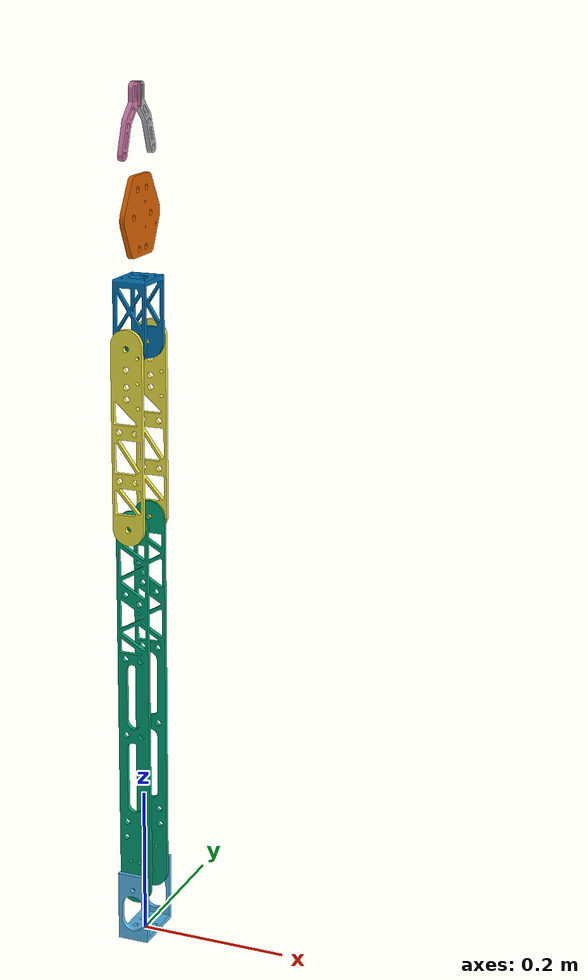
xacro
<?xml version='1.0'?>

<robot name="arm" xmlns:xacro="http://www.ros.org/wiki/xacro">

  <xacro:property name="mass_base" value="2" />
  <xacro:property name="mass_upper_arm" value="5" />
  <xacro:property name="mass_forearm" value="2" />
  <xacro:property name="mass_wrist" value="2" />
  <xacro:property name="mass_claw_base" value="0.5" />
  <xacro:property name="mass_claw" value="1" />

  <xacro:include filename="$(find simulation)/robot/arm.gazebo" />
  <link name='arm_base_link'>
    <inertial>
      <mass value="1e-5" />
      <origin xyz="0 0 0" rpy="0 0 0"/>
      <inertia ixx="1e-6" ixy="0" ixz="0" iyy="1e-6" iyz="0" izz="1e-6" />
    </inertial>
  </link>
  <link name='base'>
    <inertial>
      <mass value="1.0"/>
      <origin xyz="0 0 0.047" rpy=" 0 0 0"/>
      <inertia
        ixx="${mass_base / 12.0 * (0.0785*0.0785 + 0.0953*0.0953)}" ixy="0.0" ixz="0.0"
        iyy="${mass_base / 12.0 * (0.0953*0.0953 + 0.0785*0.0785)}" iyz="0.0"
        izz="${mass_base / 12.0 * (0.0785*0.0785 + 0.0785*0.0785)}"/>
    </inertial>

    <collision name='collision'>
      <geometry>
        <mesh filename="package://simulation/robot/arm_parts/base.dae"/>
      </geometry>
    </collision>

    <visual name='visual'>
      <origin rpy="0 0 0" xyz="0 0 0"/>
      <geometry>
        <mesh filename="package://simulation/robot/arm_parts/base.dae"/>
      </geometry>
    </visual>
  </link>
  <joint type="revolute" name="base_arm_hinge">
    <limit upper="3.14" lower="-3.14" velocity="5" effort="10000"/>
    <origin xyz="0 0 0" rpy="0 0 0"/>
    <axis xyz="0 0 1" />
    <child link="base"/>
    <parent link="arm_base_link"/>
  </joint>

  <link name='upper_arm'>
    <collision name='collision'>
      <origin rpy="0 0 0" xyz="0 0 -0.0216"/>
      <geometry>
        <mesh filename="package://simulation/robot/arm_parts/upper_arm.dae"/>
      </geometry>
    </collision>

    <visual name='visual'>
      <origin rpy="0 0 0" xyz="0 0 -0.0216"/>
      <geometry>
        <mesh filename="package://simulation/robot/arm_parts/upper_arm.dae"/>
      </geometry>
    </visual>

    <inertial>
      <mass value="${mass_upper_arm}"/>
      <origin xyz="0 0 0.253" rpy=" 0 0 0"/>
      <inertia
          ixx="${mass_upper_arm / 12.0 * (0.0594*0.0594 + 0.507*0.507)}" ixy="0" ixz="0"
          iyy="${mass_upper_arm / 12.0 * (0.507*0.507 + 0.0594*0.0594)}" iyz="0"
          izz="${mass_upper_arm / 12.0 * (0.0594*0.0594 + 0.0594*0.0594)}"
      />
    </inertial>
  </link>

  <link name='forearm'>
    <collision name='collision'>
      <origin rpy="0 0 0" xyz="0 0 0.118"/>
      <geometry>
        <box size="0.0424 0.0785 0.237"/>
      </geometry>
    </collision>

    <visual name='visual'>
      <origin rpy="0 0 0" xyz="0 0 -0.0216"/>
      <geometry>
        <mesh filename="package://simulation/robot/arm_parts/forearm.dae"/>
      </geometry>
    </visual>

    <inertial>
      <mass value="${mass_forearm}"/>
      <origin xyz="0 0 0.118" rpy=" 0 0 0"/>
      <inertia
        ixx="${mass_forearm / 12.0 * (0.0785*0.0785 + 0.237*0.237)}" ixy="0.0" ixz="0.0"
        iyy="${mass_forearm / 12.0 * (0.237*0.237 + 0.0785*0.0785)}" iyz="0.0"
        izz="${mass_forearm / 12.0 * (0.0785*0.0785 + 0.0785*0.0785)}"/>
    </inertial>
  </link>

  <link name='wrist'>
    <collision name='collision'>
      <origin rpy="0 0 0" xyz="0 0 0.0217"/>
      <geometry>
        <box size="0.0432 0.0595 0.0865"/>
      </geometry>
    </collision>

    <visual name='visual'>
      <origin rpy="0 0 0" xyz="0 0 -0.0064"/>
      <geometry>
        <mesh filename="package://simulation/robot/arm_parts/wrist.dae"/>
      </geometry>
    </visual>

    <inertial>
      <mass value="${mass_wrist}"/>
      <origin xyz="0 0 0.0217" rpy=" 0 0 0"/>
      <inertia
        ixx="${mass_wrist / 12.0 * (0.0595*0.0595 + 0.0865*0.0865)}" ixy="0.0" ixz="0.0"
        iyy="${mass_wrist / 12.0 * (0.0865*0.0865 + 0.0595*0.0595)}" iyz="0.0"
        izz="${mass_wrist / 12.0 * (0.0595*0.0595 + 0.0595*0.0595)}"/>
    </inertial>
  </link>

  <link name='claw_base'>
    <collision name='collision'>
      <origin rpy="0 0 0" xyz="0 0 0.05"/>
      <geometry>
        <box size="0.0064 0.1045 0.1"/>
      </geometry>
    </collision>

    <visual name='visual'>
      <origin rpy="0 0 0" xyz="0 0 0"/>
      <geometry>
        <mesh filename="package://simulation/robot/arm_parts/claw_base.dae"/>
      </geometry>
    </visual>

    <inertial>
      <mass value="${mass_claw_base}"/>
      <origin xyz="0 0 0.05" rpy=" 0 0 0"/>
      <inertia
        ixx="${mass_claw_base / 12.0 * (0.1045*0.1045 + 0.1*0.1)}" ixy="0.0" ixz="0.0"
        iyy="${mass_claw_base / 12.0 * (0.1*0.1 + 0.1045*0.1045)}" iyz="0.0"
        izz="${mass_claw_base / 12.0 * (0.1045*0.1045 + 0.1045*0.1045)}"/>
    </inertial>
  </link>
  <gazebo reference="claw_base">
    <implicitSpringDamper>1</implicitSpringDamper>
    <mu1>100000</mu1>
    <mu2>100000</mu2>
    <kp>100000000.0</kp>
    <kd>1.0</kd>
  </gazebo>

  <link name='claw_right'>
    <collision name='collision'>
      <origin rpy="0 0 0" xyz="0 0 0"/>
      <geometry>
        <mesh filename="package://simulation/robot/arm_parts/claw.dae"/>
      </geometry>
      <surface>
        <friction>
          <ode>
            <mu>1.4</mu>
            <mu2>1.4</mu2>
          </ode>
        </friction>
      </surface>
      <contact>
        <ode>
          <mu>1.4</mu>
          <mu2>1.4</mu2>
          <min_depth>0.003</min_depth>
          <max_vel>0</max_vel>
        </ode>
      </contact>
    </collision>

    <visual name='visual'>
      <origin rpy="0 0 0" xyz="0 0 0"/>
      <geometry>
        <mesh filename="package://simulation/robot/arm_parts/claw.dae"/>
      </geometry>
    </visual>
    <inertial>
        <mass value="0.018491" />
        <origin xyz="0.0 0.0 0.0" />
        <inertia ixx = "0.000009" ixy = "-0.000001" ixz = "0.000000"
                  iyx = "-0.000001" iyy = "0.000001" iyz = "0.000000"
                  izx = "0.000000" izy = "0.000000" izz = "0.000010" />
    </inertial>
  </link>

  <link name='claw_left'>
    <collision name='collision'>
      <origin rpy="0 0 0" xyz="0 0 0"/>
      <geometry>
        <mesh filename="package://simulation/robot/arm_parts/claw.dae"/>
      </geometry>
      <surface>
        <friction>
          <ode>
            <mu>1.4</mu>
            <mu2>1.4</mu2>
          </ode>
        </friction>
      </surface>
      <contact>
        <ode>
          <mu>1.4</mu>
          <mu2>1.4</mu2>
          <min_depth>0.003</min_depth>
          <max_vel>0</max_vel>
        </ode>
      </contact>
    </collision>

    <visual name='visual'>
      <origin rpy="0 0 0" xyz="0 0 0"/>
      <geometry>
        <mesh filename="package://simulation/robot/arm_parts/claw.dae"/>
      </geometry>
    </visual>
    <inertial>
        <mass value="0.018491" />
        <origin xyz="0.0 0.0 0.0" />
        <inertia ixx = "0.000009" ixy = "-0.000001" ixz = "0.000000"
                  iyx = "-0.000001" iyy = "0.000001" iyz = "0.000000"
                  izx = "0.000000" izy = "0.000000" izz = "0.000010" />
    </inertial>
  </link>
  <gazebo reference="claw_left">
    <implicitSpringDamper>1</implicitSpringDamper>
    <mu1>100000</mu1>
    <mu2>100000</mu2>
    <kp>100000000.0</kp>
    <kd>1.0</kd>
  </gazebo>
  <gazebo reference="claw_right">
    <implicitSpringDamper>1</implicitSpringDamper>
    <mu1>100000</mu1>
    <mu2>100000</mu2>
    <kp>100000000.0</kp>
    <kd>1.0</kd>
  </gazebo>

  <joint type="revolute" name="lower_hinge">
    <limit upper="3.14" lower="-3.14" velocity="5" effort="10000"/>
    <origin xyz="0 0 0.074"/>
    <axis xyz="0 1 0" />
    <child link="upper_arm"/>
    <parent link="base"/>
  </joint>

  <joint type="revolute" name="upper_hinge">
    <limit upper="3.0" lower="-3.0" velocity="5" effort="10000"/>
    <origin xyz="0 0.0 0.507"/>
    <axis xyz="0 1 0" />
    <child link="forearm"/>
    <parent link="upper_arm"/>
  </joint>

  <joint type="revolute" name="forearm_hinge">
    <limit upper="1.57" lower="-1.57" velocity="5" effort="10000"/>
    <origin xyz="0 0.0 0.237"/>
    <axis xyz="0 1 0" />
    <child link="wrist"/>
    <parent link="forearm"/>
  </joint>

  <joint type="revolute" name="wrist_hinge">
    <limit upper="6.28" lower="-6.28" velocity="1" effort="0.5"/>
    <origin xyz="0 0.0 0.107"/>
    <axis xyz="0 0 1" />
    <child link="claw_base"/>
    <parent link="wrist"/>
  </joint>

  <joint type="revolute" name="claw_right_hinge">
    <limit upper="1.57" lower="0" velocity="2.0" effort="1000"/>
    <origin xyz="0 -0.04175 0.128"/>
    <axis xyz="1 0 0" />
    <child link="claw_right"/>
    <parent link="claw_base"/>
  </joint>

  <joint type="revolute" name="claw_left_hinge">
    <limit upper="1.57" lower="0" velocity="2.0" effort="1000"/>
    <origin xyz="0 0.04175 0.128" rpy="0 0 3.14"/>
    <axis xyz="1 0 0" />
    <child link="claw_left"/>
    <parent link="claw_base"/>
  </joint>

  <transmission name="tran1">
    <type>transmission_interface/SimpleTransmission</type>
    <joint name="base_arm_hinge">
      <hardwareInterface>hardware_interface/EffortJointInterface</hardwareInterface>
    </joint>
    <actuator name="motor1">
      <hardwareInterface>hardware_interface/EffortJointInterface</hardwareInterface>
      <mechanicalReduction>1</mechanicalReduction>
    </actuator>
  </transmission>

  <transmission name="tran2">
    <type>transmission_interface/SimpleTransmission</type>
    <joint name="lower_hinge">
      <hardwareInterface>hardware_interface/EffortJointInterface</hardwareInterface>
    </joint>
    <actuator name="motor2">
      <hardwareInterface>hardware_interface/EffortJointInterface</hardwareInterface>
      <mechanicalReduction>1</mechanicalReduction>
    </actuator>
  </transmission>

  <transmission name="tran3">
    <type>transmission_interface/SimpleTransmission</type>
    <joint name="forearm_hinge">
      <hardwareInterface>hardware_interface/EffortJointInterface</hardwareInterface>
    </joint>
    <actuator name="motor3">
      <hardwareInterface>hardware_interface/EffortJointInterface</hardwareInterface>
      <mechanicalReduction>1</mechanicalReduction>
    </actuator>
  </transmission>

  <transmission name="tran4">
    <type>transmission_interface/SimpleTransmission</type>
    <joint name="wrist_hinge">
      <hardwareInterface>hardware_interface/EffortJointInterface</hardwareInterface>
    </joint>
    <actuator name="motor4">
      <hardwareInterface>hardware_interface/EffortJointInterface</hardwareInterface>
      <mechanicalReduction>1</mechanicalReduction>
    </actuator>
  </transmission>

  <transmission name="tran5">
    <type>transmission_interface/SimpleTransmission</type>
    <joint name="upper_hinge">
      <hardwareInterface>hardware_interface/EffortJointInterface</hardwareInterface>
    </joint>
    <actuator name="motor5">
      <hardwareInterface>hardware_interface/EffortJointInterface</hardwareInterface>
      <mechanicalReduction>1</mechanicalReduction>
    </actuator>
  </transmission>

  <transmission name="tran6">
    <type>transmission_interface/SimpleTransmission</type>
    <joint name="claw_right_hinge">
      <hardwareInterface>hardware_interface/EffortJointInterface</hardwareInterface>
    </joint>
    <actuator name="motor6">
      <hardwareInterface>hardware_interface/EffortJointInterface</hardwareInterface>
      <mechanicalReduction>1</mechanicalReduction>
    </actuator>
  </transmission>

  <transmission name="tran7">
    <type>transmission_interface/SimpleTransmission</type>
    <joint name="claw_left_hinge">
      <hardwareInterface>hardware_interface/EffortJointInterface</hardwareInterface>
    </joint>
    <actuator name="motor7">
      <hardwareInterface>hardware_interface/EffortJointInterface</hardwareInterface>
      <mechanicalReduction>1</mechanicalReduction>
    </actuator>
  </transmission>

  <!--using the grasp plugin so that the gripper can grasp things in simulation-->
  <gazebo>
   <plugin name="gazebo_grasp_fix" filename="libgazebo_grasp_fix.so">
        <arm>
           <arm_name>rover_arm</arm_name>
           <palm_link>claw_base</palm_link>
           <gripper_link>claw_left</gripper_link>
           <gripper_link>claw_right</gripper_link>
        </arm>
       <forces_angle_tolerance>100</forces_angle_tolerance>
       <update_rate>5</update_rate>
       <grip_count_threshold>4</grip_count_threshold>
       <max_grip_count>8</max_grip_count>
       <release_tolerance>0.005</release_tolerance>
       <disable_collisions_on_attach>false</disable_collisions_on_attach>
       <contact_topic>__default_topic__</contact_topic>
    </plugin>
  </gazebo>
</robot>
